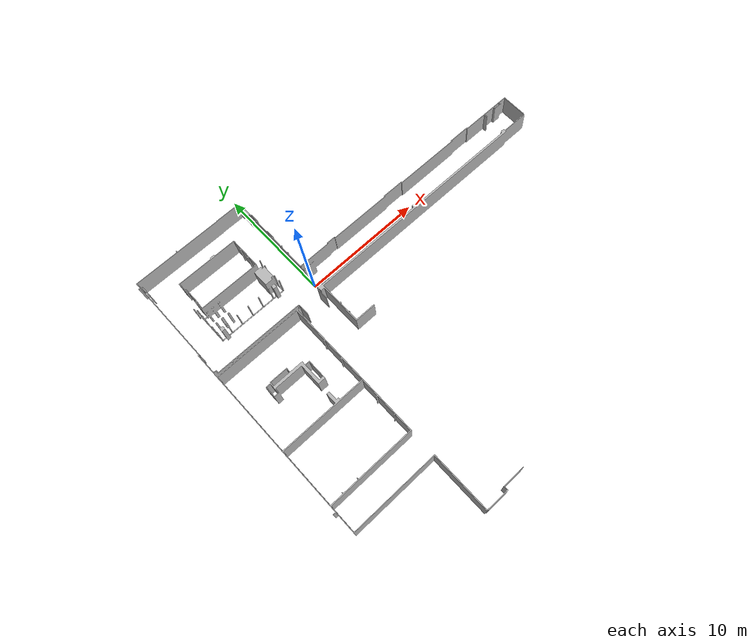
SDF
<?xml version="1.0" ?>
<sdf version="1.6">
  <model name="hallway3_5/walls">
    <link name="1">
      <collision name="1">
        <geometry>
          <mesh>
            <uri>model://hallway3_5/walls/shape/heightmap.stl</uri>
          </mesh>
        </geometry>
      </collision>
      <visual name="1">
        <geometry>
          <mesh>
            <uri>model://hallway3_5/walls/shape/heightmap.stl</uri>
          </mesh>
        </geometry>
      </visual>
      <pose>0 0 0 0 0 0</pose>
    </link>
    <static>true</static>
  </model>
</sdf>
